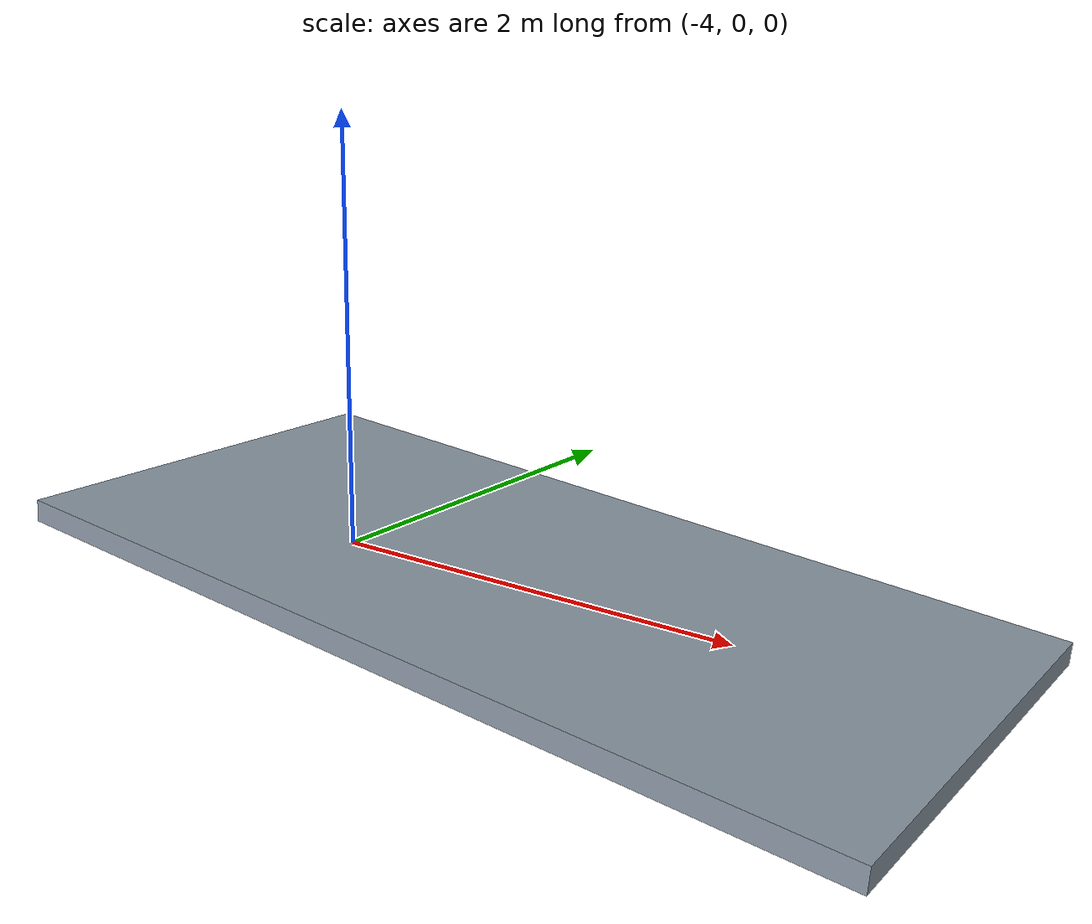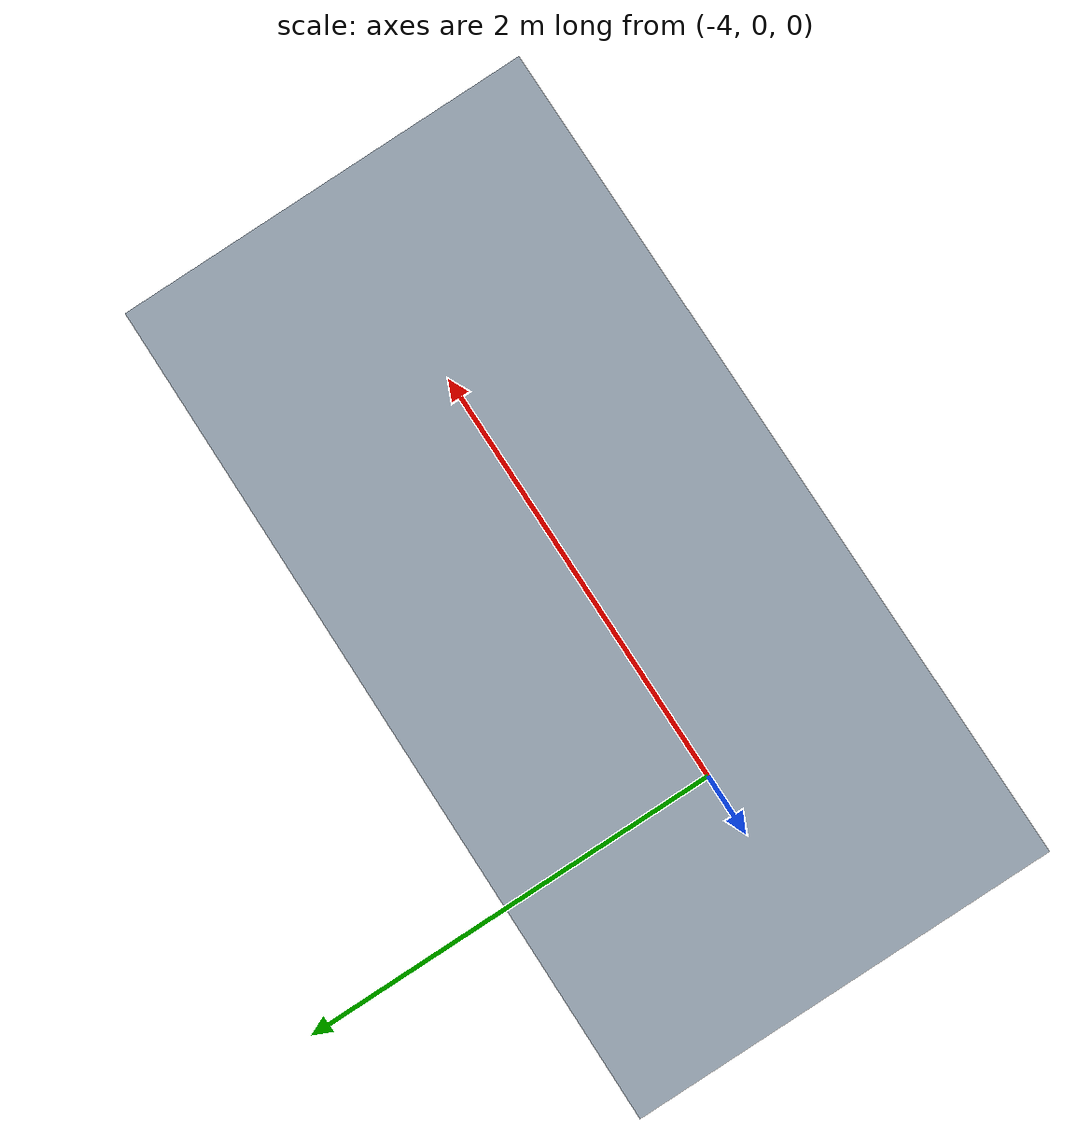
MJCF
<mujoco model="slope_5deg">
  <!-- 5 degree ramp along +x (height rises as x increases). -->
  <worldbody>
    <body name="slope" pos="-3 0 0">
      <!-- Rotate around Y by 5 deg: quat = [cos(2.5deg), 0, sin(2.5deg), 0] -->
      <geom name="slope_ramp"
            type="box"
            size="2.0 1.0 0.05"
            pos="0 0 0.05"
            quat="0.999048 0 0.043619 0"
            rgba="0.55 0.6 0.65 1"
            priority="1"
            friction="0.8 0.1 0.001"/>
    </body>
  </worldbody>
</mujoco>
